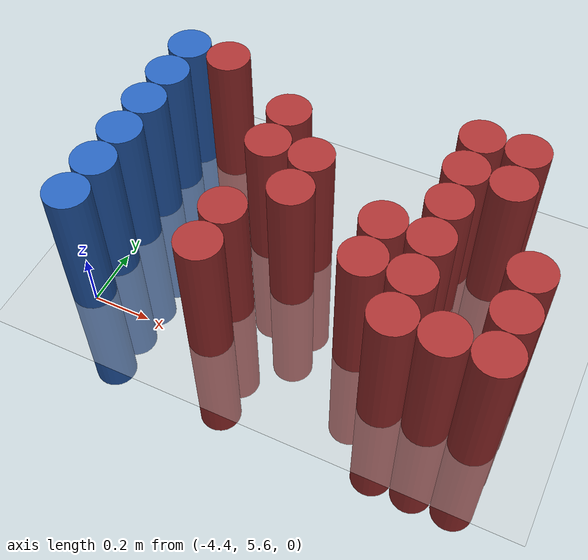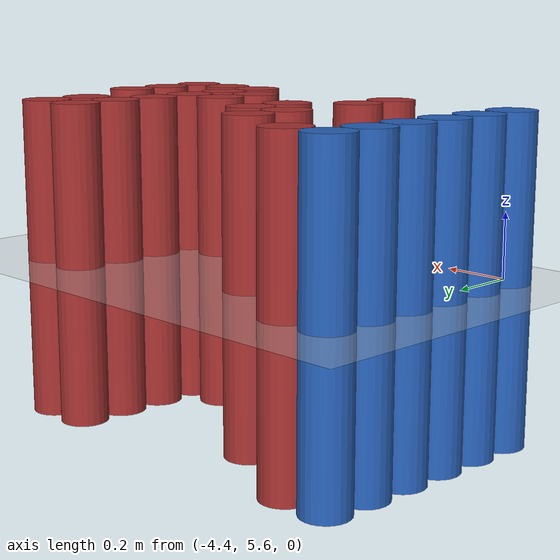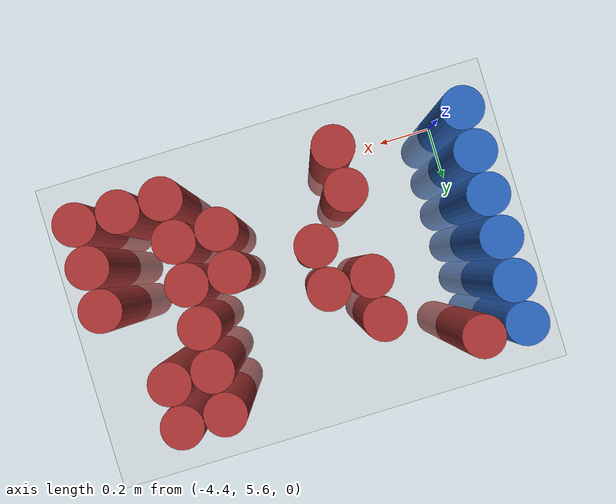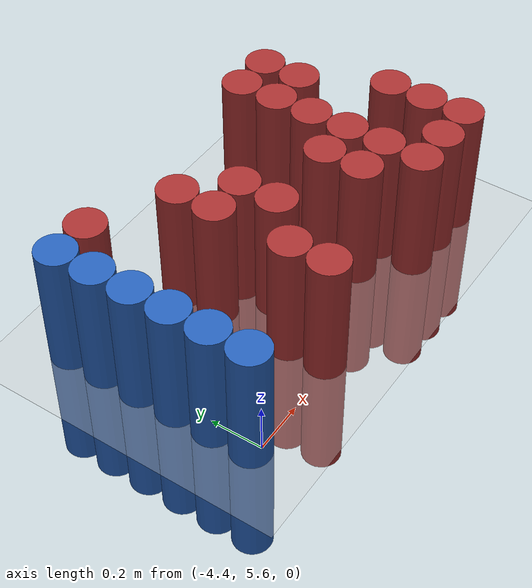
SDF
<sdf version="1.6">
 <world name="default">
  <model name="ground_plane">
   <static>1</static>
   <link name="link">
    <collision name="collision">
     <geometry><plane><normal>0 0 1</normal><size>100 100</size></plane></geometry>
     <surface><friction><ode><mu>100</mu><mu2>50</mu2></ode></friction></surface>
    </collision>
    <visual name="visual">
     <cast_shadows>0</cast_shadows>
     <geometry><plane><normal>0 0 1</normal><size>100 100</size></plane></geometry>
     <material>
      <script><uri>file://media/materials/scripts/gazebo.material</uri><name>Gazebo/Grey</name></script>
     </material>
    </visual>
   </link>
  </model>
  <model name="unit_cylinder_99">
   <static>1</static>
   <pose>-4.425000 5.625000 0.000000 0.000000 0.000000 0.000000</pose>
   <link name="link">
    <inertial>
     <mass>1</mass>
     <inertia><ixx>0.145833</ixx><ixy>0</ixy><ixz>0</ixz><iyy>0.145833</iyy><iyz>0</iyz><izz>0.125</izz></inertia>
    </inertial>
    <collision name="collision">
     <geometry><cylinder><radius>0.075000</radius><length>1</length></cylinder></geometry>
    </collision>
    <visual name="visual">
     <geometry><cylinder><radius>0.075000</radius><length>1</length></cylinder></geometry>
     <material>
      <ambient>0.152000 0.379000 0.720000 1</ambient>
      <diffuse>0.152000 0.379000 0.720000 1</diffuse>
     </material>
     <material>
      <script><name>Gazebo/Grey</name><uri>file://media/materials/scripts/gazebo.material</uri></script>
     </material>
    </visual>
   </link>
  </model>
  <model name="unit_cylinder_100">
   <static>1</static>
   <pose>-4.425000 5.775000 0.000000 0.000000 0.000000 0.000000</pose>
   <link name="link">
    <inertial>
     <mass>1</mass>
     <inertia><ixx>0.145833</ixx><ixy>0</ixy><ixz>0</ixz><iyy>0.145833</iyy><iyz>0</iyz><izz>0.125</izz></inertia>
    </inertial>
    <collision name="collision">
     <geometry><cylinder><radius>0.075000</radius><length>1</length></cylinder></geometry>
    </collision>
    <visual name="visual">
     <geometry><cylinder><radius>0.075000</radius><length>1</length></cylinder></geometry>
     <material>
      <ambient>0.152000 0.379000 0.720000 1</ambient>
      <diffuse>0.152000 0.379000 0.720000 1</diffuse>
     </material>
     <material>
      <script><name>Gazebo/Grey</name><uri>file://media/materials/scripts/gazebo.material</uri></script>
     </material>
    </visual>
   </link>
  </model>
  <model name="unit_cylinder_101">
   <static>1</static>
   <pose>-4.425000 5.925000 0.000000 0.000000 0.000000 0.000000</pose>
   <link name="link">
    <inertial>
     <mass>1</mass>
     <inertia><ixx>0.145833</ixx><ixy>0</ixy><ixz>0</ixz><iyy>0.145833</iyy><iyz>0</iyz><izz>0.125</izz></inertia>
    </inertial>
    <collision name="collision">
     <geometry><cylinder><radius>0.075000</radius><length>1</length></cylinder></geometry>
    </collision>
    <visual name="visual">
     <geometry><cylinder><radius>0.075000</radius><length>1</length></cylinder></geometry>
     <material>
      <ambient>0.152000 0.379000 0.720000 1</ambient>
      <diffuse>0.152000 0.379000 0.720000 1</diffuse>
     </material>
     <material>
      <script><name>Gazebo/Grey</name><uri>file://media/materials/scripts/gazebo.material</uri></script>
     </material>
    </visual>
   </link>
  </model>
  <model name="unit_cylinder_102">
   <static>1</static>
   <pose>-4.425000 6.075000 0.000000 0.000000 0.000000 0.000000</pose>
   <link name="link">
    <inertial>
     <mass>1</mass>
     <inertia><ixx>0.145833</ixx><ixy>0</ixy><ixz>0</ixz><iyy>0.145833</iyy><iyz>0</iyz><izz>0.125</izz></inertia>
    </inertial>
    <collision name="collision">
     <geometry><cylinder><radius>0.075000</radius><length>1</length></cylinder></geometry>
    </collision>
    <visual name="visual">
     <geometry><cylinder><radius>0.075000</radius><length>1</length></cylinder></geometry>
     <material>
      <ambient>0.152000 0.379000 0.720000 1</ambient>
      <diffuse>0.152000 0.379000 0.720000 1</diffuse>
     </material>
     <material>
      <script><name>Gazebo/Grey</name><uri>file://media/materials/scripts/gazebo.material</uri></script>
     </material>
    </visual>
   </link>
  </model>
  <model name="unit_cylinder_103">
   <static>1</static>
   <pose>-4.425000 6.225000 0.000000 0.000000 0.000000 0.000000</pose>
   <link name="link">
    <inertial>
     <mass>1</mass>
     <inertia><ixx>0.145833</ixx><ixy>0</ixy><ixz>0</ixz><iyy>0.145833</iyy><iyz>0</iyz><izz>0.125</izz></inertia>
    </inertial>
    <collision name="collision">
     <geometry><cylinder><radius>0.075000</radius><length>1</length></cylinder></geometry>
    </collision>
    <visual name="visual">
     <geometry><cylinder><radius>0.075000</radius><length>1</length></cylinder></geometry>
     <material>
      <ambient>0.152000 0.379000 0.720000 1</ambient>
      <diffuse>0.152000 0.379000 0.720000 1</diffuse>
     </material>
     <material>
      <script><name>Gazebo/Grey</name><uri>file://media/materials/scripts/gazebo.material</uri></script>
     </material>
    </visual>
   </link>
  </model>
  <model name="unit_cylinder_104">
   <static>1</static>
   <pose>-4.425000 6.375000 0.000000 0.000000 0.000000 0.000000</pose>
   <link name="link">
    <inertial>
     <mass>1</mass>
     <inertia><ixx>0.145833</ixx><ixy>0</ixy><ixz>0</ixz><iyy>0.145833</iyy><iyz>0</iyz><izz>0.125</izz></inertia>
    </inertial>
    <collision name="collision">
     <geometry><cylinder><radius>0.075000</radius><length>1</length></cylinder></geometry>
    </collision>
    <visual name="visual">
     <geometry><cylinder><radius>0.075000</radius><length>1</length></cylinder></geometry>
     <material>
      <ambient>0.152000 0.379000 0.720000 1</ambient>
      <diffuse>0.152000 0.379000 0.720000 1</diffuse>
     </material>
     <material>
      <script><name>Gazebo/Grey</name><uri>file://media/materials/scripts/gazebo.material</uri></script>
     </material>
    </visual>
   </link>
  </model>
  <model name="unit_cylinder_128">
   <static>1</static>
   <pose>-4.275000 6.375000 0.000000 0.000000 0.000000 0.000000</pose>
   <link name="link">
    <inertial>
     <mass>1</mass>
     <inertia><ixx>0.145833</ixx><ixy>0</ixy><ixz>0</ixz><iyy>0.145833</iyy><iyz>0</iyz><izz>0.125</izz></inertia>
    </inertial>
    <collision name="collision">
     <geometry><cylinder><radius>0.075000</radius><length>1</length></cylinder></geometry>
    </collision>
    <visual name="visual">
     <geometry><cylinder><radius>0.075000</radius><length>1</length></cylinder></geometry>
     <material>
      <ambient>0.648000 0.192000 0.192000 1</ambient>
      <diffuse>0.648000 0.192000 0.192000 1</diffuse>
     </material>
     <material>
      <script><name>Gazebo/Grey</name><uri>file://media/materials/scripts/gazebo.material</uri></script>
     </material>
    </visual>
   </link>
  </model>
  <model name="unit_cylinder_148">
   <static>1</static>
   <pose>-3.975000 5.625000 0.000000 0.000000 0.000000 0.000000</pose>
   <link name="link">
    <inertial>
     <mass>1</mass>
     <inertia><ixx>0.145833</ixx><ixy>0</ixy><ixz>0</ixz><iyy>0.145833</iyy><iyz>0</iyz><izz>0.125</izz></inertia>
    </inertial>
    <collision name="collision">
     <geometry><cylinder><radius>0.075000</radius><length>1</length></cylinder></geometry>
    </collision>
    <visual name="visual">
     <geometry><cylinder><radius>0.075000</radius><length>1</length></cylinder></geometry>
     <material>
      <ambient>0.648000 0.192000 0.192000 1</ambient>
      <diffuse>0.648000 0.192000 0.192000 1</diffuse>
     </material>
     <material>
      <script><name>Gazebo/Grey</name><uri>file://media/materials/scripts/gazebo.material</uri></script>
     </material>
    </visual>
   </link>
  </model>
  <model name="unit_cylinder_149">
   <static>1</static>
   <pose>-3.975000 5.775000 0.000000 0.000000 0.000000 0.000000</pose>
   <link name="link">
    <inertial>
     <mass>1</mass>
     <inertia><ixx>0.145833</ixx><ixy>0</ixy><ixz>0</ixz><iyy>0.145833</iyy><iyz>0</iyz><izz>0.125</izz></inertia>
    </inertial>
    <collision name="collision">
     <geometry><cylinder><radius>0.075000</radius><length>1</length></cylinder></geometry>
    </collision>
    <visual name="visual">
     <geometry><cylinder><radius>0.075000</radius><length>1</length></cylinder></geometry>
     <material>
      <ambient>0.648000 0.192000 0.192000 1</ambient>
      <diffuse>0.648000 0.192000 0.192000 1</diffuse>
     </material>
     <material>
      <script><name>Gazebo/Grey</name><uri>file://media/materials/scripts/gazebo.material</uri></script>
     </material>
    </visual>
   </link>
  </model>
  <model name="unit_cylinder_150">
   <static>1</static>
   <pose>-3.975000 6.075000 0.000000 0.000000 0.000000 0.000000</pose>
   <link name="link">
    <inertial>
     <mass>1</mass>
     <inertia><ixx>0.145833</ixx><ixy>0</ixy><ixz>0</ixz><iyy>0.145833</iyy><iyz>0</iyz><izz>0.125</izz></inertia>
    </inertial>
    <collision name="collision">
     <geometry><cylinder><radius>0.075000</radius><length>1</length></cylinder></geometry>
    </collision>
    <visual name="visual">
     <geometry><cylinder><radius>0.075000</radius><length>1</length></cylinder></geometry>
     <material>
      <ambient>0.648000 0.192000 0.192000 1</ambient>
      <diffuse>0.648000 0.192000 0.192000 1</diffuse>
     </material>
     <material>
      <script><name>Gazebo/Grey</name><uri>file://media/materials/scripts/gazebo.material</uri></script>
     </material>
    </visual>
   </link>
  </model>
  <model name="unit_cylinder_151">
   <static>1</static>
   <pose>-3.975000 6.225000 0.000000 0.000000 0.000000 0.000000</pose>
   <link name="link">
    <inertial>
     <mass>1</mass>
     <inertia><ixx>0.145833</ixx><ixy>0</ixy><ixz>0</ixz><iyy>0.145833</iyy><iyz>0</iyz><izz>0.125</izz></inertia>
    </inertial>
    <collision name="collision">
     <geometry><cylinder><radius>0.075000</radius><length>1</length></cylinder></geometry>
    </collision>
    <visual name="visual">
     <geometry><cylinder><radius>0.075000</radius><length>1</length></cylinder></geometry>
     <material>
      <ambient>0.648000 0.192000 0.192000 1</ambient>
      <diffuse>0.648000 0.192000 0.192000 1</diffuse>
     </material>
     <material>
      <script><name>Gazebo/Grey</name><uri>file://media/materials/scripts/gazebo.material</uri></script>
     </material>
    </visual>
   </link>
  </model>
  <model name="unit_cylinder_154">
   <static>1</static>
   <pose>-3.825000 5.925000 0.000000 0.000000 0.000000 0.000000</pose>
   <link name="link">
    <inertial>
     <mass>1</mass>
     <inertia><ixx>0.145833</ixx><ixy>0</ixy><ixz>0</ixz><iyy>0.145833</iyy><iyz>0</iyz><izz>0.125</izz></inertia>
    </inertial>
    <collision name="collision">
     <geometry><cylinder><radius>0.075000</radius><length>1</length></cylinder></geometry>
    </collision>
    <visual name="visual">
     <geometry><cylinder><radius>0.075000</radius><length>1</length></cylinder></geometry>
     <material>
      <ambient>0.648000 0.192000 0.192000 1</ambient>
      <diffuse>0.648000 0.192000 0.192000 1</diffuse>
     </material>
     <material>
      <script><name>Gazebo/Grey</name><uri>file://media/materials/scripts/gazebo.material</uri></script>
     </material>
    </visual>
   </link>
  </model>
  <model name="unit_cylinder_155">
   <static>1</static>
   <pose>-3.825000 6.075000 0.000000 0.000000 0.000000 0.000000</pose>
   <link name="link">
    <inertial>
     <mass>1</mass>
     <inertia><ixx>0.145833</ixx><ixy>0</ixy><ixz>0</ixz><iyy>0.145833</iyy><iyz>0</iyz><izz>0.125</izz></inertia>
    </inertial>
    <collision name="collision">
     <geometry><cylinder><radius>0.075000</radius><length>1</length></cylinder></geometry>
    </collision>
    <visual name="visual">
     <geometry><cylinder><radius>0.075000</radius><length>1</length></cylinder></geometry>
     <material>
      <ambient>0.648000 0.192000 0.192000 1</ambient>
      <diffuse>0.648000 0.192000 0.192000 1</diffuse>
     </material>
     <material>
      <script><name>Gazebo/Grey</name><uri>file://media/materials/scripts/gazebo.material</uri></script>
     </material>
    </visual>
   </link>
  </model>
  <model name="unit_cylinder_164">
   <static>1</static>
   <pose>-3.525000 5.775000 0.000000 0.000000 0.000000 0.000000</pose>
   <link name="link">
    <inertial>
     <mass>1</mass>
     <inertia><ixx>0.145833</ixx><ixy>0</ixy><ixz>0</ixz><iyy>0.145833</iyy><iyz>0</iyz><izz>0.125</izz></inertia>
    </inertial>
    <collision name="collision">
     <geometry><cylinder><radius>0.075000</radius><length>1</length></cylinder></geometry>
    </collision>
    <visual name="visual">
     <geometry><cylinder><radius>0.075000</radius><length>1</length></cylinder></geometry>
     <material>
      <ambient>0.648000 0.192000 0.192000 1</ambient>
      <diffuse>0.648000 0.192000 0.192000 1</diffuse>
     </material>
     <material>
      <script><name>Gazebo/Grey</name><uri>file://media/materials/scripts/gazebo.material</uri></script>
     </material>
    </visual>
   </link>
  </model>
  <model name="unit_cylinder_165">
   <static>1</static>
   <pose>-3.525000 5.925000 0.000000 0.000000 0.000000 0.000000</pose>
   <link name="link">
    <inertial>
     <mass>1</mass>
     <inertia><ixx>0.145833</ixx><ixy>0</ixy><ixz>0</ixz><iyy>0.145833</iyy><iyz>0</iyz><izz>0.125</izz></inertia>
    </inertial>
    <collision name="collision">
     <geometry><cylinder><radius>0.075000</radius><length>1</length></cylinder></geometry>
    </collision>
    <visual name="visual">
     <geometry><cylinder><radius>0.075000</radius><length>1</length></cylinder></geometry>
     <material>
      <ambient>0.648000 0.192000 0.192000 1</ambient>
      <diffuse>0.648000 0.192000 0.192000 1</diffuse>
     </material>
     <material>
      <script><name>Gazebo/Grey</name><uri>file://media/materials/scripts/gazebo.material</uri></script>
     </material>
    </visual>
   </link>
  </model>
  <model name="unit_cylinder_173">
   <static>1</static>
   <pose>-3.375000 5.625000 0.000000 0.000000 0.000000 0.000000</pose>
   <link name="link">
    <inertial>
     <mass>1</mass>
     <inertia><ixx>0.145833</ixx><ixy>0</ixy><ixz>0</ixz><iyy>0.145833</iyy><iyz>0</iyz><izz>0.125</izz></inertia>
    </inertial>
    <collision name="collision">
     <geometry><cylinder><radius>0.075000</radius><length>1</length></cylinder></geometry>
    </collision>
    <visual name="visual">
     <geometry><cylinder><radius>0.075000</radius><length>1</length></cylinder></geometry>
     <material>
      <ambient>0.648000 0.192000 0.192000 1</ambient>
      <diffuse>0.648000 0.192000 0.192000 1</diffuse>
     </material>
     <material>
      <script><name>Gazebo/Grey</name><uri>file://media/materials/scripts/gazebo.material</uri></script>
     </material>
    </visual>
   </link>
  </model>
  <model name="unit_cylinder_174">
   <static>1</static>
   <pose>-3.375000 5.775000 0.000000 0.000000 0.000000 0.000000</pose>
   <link name="link">
    <inertial>
     <mass>1</mass>
     <inertia><ixx>0.145833</ixx><ixy>0</ixy><ixz>0</ixz><iyy>0.145833</iyy><iyz>0</iyz><izz>0.125</izz></inertia>
    </inertial>
    <collision name="collision">
     <geometry><cylinder><radius>0.075000</radius><length>1</length></cylinder></geometry>
    </collision>
    <visual name="visual">
     <geometry><cylinder><radius>0.075000</radius><length>1</length></cylinder></geometry>
     <material>
      <ambient>0.648000 0.192000 0.192000 1</ambient>
      <diffuse>0.648000 0.192000 0.192000 1</diffuse>
     </material>
     <material>
      <script><name>Gazebo/Grey</name><uri>file://media/materials/scripts/gazebo.material</uri></script>
     </material>
    </visual>
   </link>
  </model>
  <model name="unit_cylinder_175">
   <static>1</static>
   <pose>-3.375000 5.925000 0.000000 0.000000 0.000000 0.000000</pose>
   <link name="link">
    <inertial>
     <mass>1</mass>
     <inertia><ixx>0.145833</ixx><ixy>0</ixy><ixz>0</ixz><iyy>0.145833</iyy><iyz>0</iyz><izz>0.125</izz></inertia>
    </inertial>
    <collision name="collision">
     <geometry><cylinder><radius>0.075000</radius><length>1</length></cylinder></geometry>
    </collision>
    <visual name="visual">
     <geometry><cylinder><radius>0.075000</radius><length>1</length></cylinder></geometry>
     <material>
      <ambient>0.648000 0.192000 0.192000 1</ambient>
      <diffuse>0.648000 0.192000 0.192000 1</diffuse>
     </material>
     <material>
      <script><name>Gazebo/Grey</name><uri>file://media/materials/scripts/gazebo.material</uri></script>
     </material>
    </visual>
   </link>
  </model>
  <model name="unit_cylinder_176">
   <static>1</static>
   <pose>-3.375000 6.075000 0.000000 0.000000 0.000000 0.000000</pose>
   <link name="link">
    <inertial>
     <mass>1</mass>
     <inertia><ixx>0.145833</ixx><ixy>0</ixy><ixz>0</ixz><iyy>0.145833</iyy><iyz>0</iyz><izz>0.125</izz></inertia>
    </inertial>
    <collision name="collision">
     <geometry><cylinder><radius>0.075000</radius><length>1</length></cylinder></geometry>
    </collision>
    <visual name="visual">
     <geometry><cylinder><radius>0.075000</radius><length>1</length></cylinder></geometry>
     <material>
      <ambient>0.648000 0.192000 0.192000 1</ambient>
      <diffuse>0.648000 0.192000 0.192000 1</diffuse>
     </material>
     <material>
      <script><name>Gazebo/Grey</name><uri>file://media/materials/scripts/gazebo.material</uri></script>
     </material>
    </visual>
   </link>
  </model>
  <model name="unit_cylinder_177">
   <static>1</static>
   <pose>-3.375000 6.225000 0.000000 0.000000 0.000000 0.000000</pose>
   <link name="link">
    <inertial>
     <mass>1</mass>
     <inertia><ixx>0.145833</ixx><ixy>0</ixy><ixz>0</ixz><iyy>0.145833</iyy><iyz>0</iyz><izz>0.125</izz></inertia>
    </inertial>
    <collision name="collision">
     <geometry><cylinder><radius>0.075000</radius><length>1</length></cylinder></geometry>
    </collision>
    <visual name="visual">
     <geometry><cylinder><radius>0.075000</radius><length>1</length></cylinder></geometry>
     <material>
      <ambient>0.648000 0.192000 0.192000 1</ambient>
      <diffuse>0.648000 0.192000 0.192000 1</diffuse>
     </material>
     <material>
      <script><name>Gazebo/Grey</name><uri>file://media/materials/scripts/gazebo.material</uri></script>
     </material>
    </visual>
   </link>
  </model>
  <model name="unit_cylinder_178">
   <static>1</static>
   <pose>-3.375000 6.375000 0.000000 0.000000 0.000000 0.000000</pose>
   <link name="link">
    <inertial>
     <mass>1</mass>
     <inertia><ixx>0.145833</ixx><ixy>0</ixy><ixz>0</ixz><iyy>0.145833</iyy><iyz>0</iyz><izz>0.125</izz></inertia>
    </inertial>
    <collision name="collision">
     <geometry><cylinder><radius>0.075000</radius><length>1</length></cylinder></geometry>
    </collision>
    <visual name="visual">
     <geometry><cylinder><radius>0.075000</radius><length>1</length></cylinder></geometry>
     <material>
      <ambient>0.648000 0.192000 0.192000 1</ambient>
      <diffuse>0.648000 0.192000 0.192000 1</diffuse>
     </material>
     <material>
      <script><name>Gazebo/Grey</name><uri>file://media/materials/scripts/gazebo.material</uri></script>
     </material>
    </visual>
   </link>
  </model>
  <model name="unit_cylinder_190">
   <static>1</static>
   <pose>-3.225000 5.625000 0.000000 0.000000 0.000000 0.000000</pose>
   <link name="link">
    <inertial>
     <mass>1</mass>
     <inertia><ixx>0.145833</ixx><ixy>0</ixy><ixz>0</ixz><iyy>0.145833</iyy><iyz>0</iyz><izz>0.125</izz></inertia>
    </inertial>
    <collision name="collision">
     <geometry><cylinder><radius>0.075000</radius><length>1</length></cylinder></geometry>
    </collision>
    <visual name="visual">
     <geometry><cylinder><radius>0.075000</radius><length>1</length></cylinder></geometry>
     <material>
      <ambient>0.648000 0.192000 0.192000 1</ambient>
      <diffuse>0.648000 0.192000 0.192000 1</diffuse>
     </material>
     <material>
      <script><name>Gazebo/Grey</name><uri>file://media/materials/scripts/gazebo.material</uri></script>
     </material>
    </visual>
   </link>
  </model>
  <model name="unit_cylinder_191">
   <static>1</static>
   <pose>-3.225000 6.225000 0.000000 0.000000 0.000000 0.000000</pose>
   <link name="link">
    <inertial>
     <mass>1</mass>
     <inertia><ixx>0.145833</ixx><ixy>0</ixy><ixz>0</ixz><iyy>0.145833</iyy><iyz>0</iyz><izz>0.125</izz></inertia>
    </inertial>
    <collision name="collision">
     <geometry><cylinder><radius>0.075000</radius><length>1</length></cylinder></geometry>
    </collision>
    <visual name="visual">
     <geometry><cylinder><radius>0.075000</radius><length>1</length></cylinder></geometry>
     <material>
      <ambient>0.648000 0.192000 0.192000 1</ambient>
      <diffuse>0.648000 0.192000 0.192000 1</diffuse>
     </material>
     <material>
      <script><name>Gazebo/Grey</name><uri>file://media/materials/scripts/gazebo.material</uri></script>
     </material>
    </visual>
   </link>
  </model>
  <model name="unit_cylinder_192">
   <static>1</static>
   <pose>-3.225000 6.375000 0.000000 0.000000 0.000000 0.000000</pose>
   <link name="link">
    <inertial>
     <mass>1</mass>
     <inertia><ixx>0.145833</ixx><ixy>0</ixy><ixz>0</ixz><iyy>0.145833</iyy><iyz>0</iyz><izz>0.125</izz></inertia>
    </inertial>
    <collision name="collision">
     <geometry><cylinder><radius>0.075000</radius><length>1</length></cylinder></geometry>
    </collision>
    <visual name="visual">
     <geometry><cylinder><radius>0.075000</radius><length>1</length></cylinder></geometry>
     <material>
      <ambient>0.648000 0.192000 0.192000 1</ambient>
      <diffuse>0.648000 0.192000 0.192000 1</diffuse>
     </material>
     <material>
      <script><name>Gazebo/Grey</name><uri>file://media/materials/scripts/gazebo.material</uri></script>
     </material>
    </visual>
   </link>
  </model>
  <model name="unit_cylinder_198">
   <static>1</static>
   <pose>-3.075000 5.625000 0.000000 0.000000 0.000000 0.000000</pose>
   <link name="link">
    <inertial>
     <mass>1</mass>
     <inertia><ixx>0.145833</ixx><ixy>0</ixy><ixz>0</ixz><iyy>0.145833</iyy><iyz>0</iyz><izz>0.125</izz></inertia>
    </inertial>
    <collision name="collision">
     <geometry><cylinder><radius>0.075000</radius><length>1</length></cylinder></geometry>
    </collision>
    <visual name="visual">
     <geometry><cylinder><radius>0.075000</radius><length>1</length></cylinder></geometry>
     <material>
      <ambient>0.648000 0.192000 0.192000 1</ambient>
      <diffuse>0.648000 0.192000 0.192000 1</diffuse>
     </material>
     <material>
      <script><name>Gazebo/Grey</name><uri>file://media/materials/scripts/gazebo.material</uri></script>
     </material>
    </visual>
   </link>
  </model>
  <model name="unit_cylinder_199">
   <static>1</static>
   <pose>-3.075000 5.775000 0.000000 0.000000 0.000000 0.000000</pose>
   <link name="link">
    <inertial>
     <mass>1</mass>
     <inertia><ixx>0.145833</ixx><ixy>0</ixy><ixz>0</ixz><iyy>0.145833</iyy><iyz>0</iyz><izz>0.125</izz></inertia>
    </inertial>
    <collision name="collision">
     <geometry><cylinder><radius>0.075000</radius><length>1</length></cylinder></geometry>
    </collision>
    <visual name="visual">
     <geometry><cylinder><radius>0.075000</radius><length>1</length></cylinder></geometry>
     <material>
      <ambient>0.648000 0.192000 0.192000 1</ambient>
      <diffuse>0.648000 0.192000 0.192000 1</diffuse>
     </material>
     <material>
      <script><name>Gazebo/Grey</name><uri>file://media/materials/scripts/gazebo.material</uri></script>
     </material>
    </visual>
   </link>
  </model>
  <model name="unit_cylinder_200">
   <static>1</static>
   <pose>-3.075000 5.925000 0.000000 0.000000 0.000000 0.000000</pose>
   <link name="link">
    <inertial>
     <mass>1</mass>
     <inertia><ixx>0.145833</ixx><ixy>0</ixy><ixz>0</ixz><iyy>0.145833</iyy><iyz>0</iyz><izz>0.125</izz></inertia>
    </inertial>
    <collision name="collision">
     <geometry><cylinder><radius>0.075000</radius><length>1</length></cylinder></geometry>
    </collision>
    <visual name="visual">
     <geometry><cylinder><radius>0.075000</radius><length>1</length></cylinder></geometry>
     <material>
      <ambient>0.648000 0.192000 0.192000 1</ambient>
      <diffuse>0.648000 0.192000 0.192000 1</diffuse>
     </material>
     <material>
      <script><name>Gazebo/Grey</name><uri>file://media/materials/scripts/gazebo.material</uri></script>
     </material>
    </visual>
   </link>
  </model>
 </world>
</sdf>
